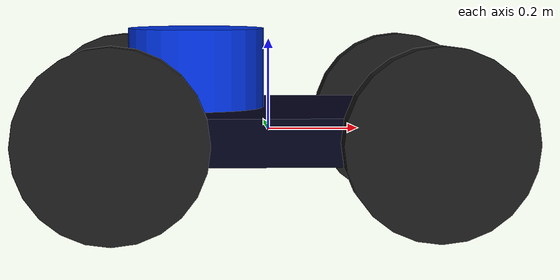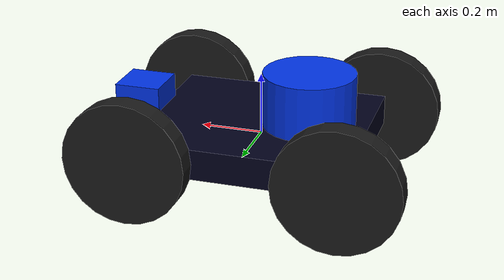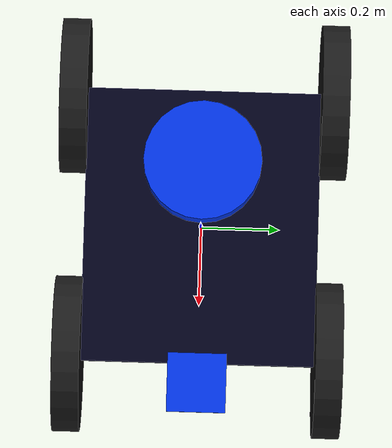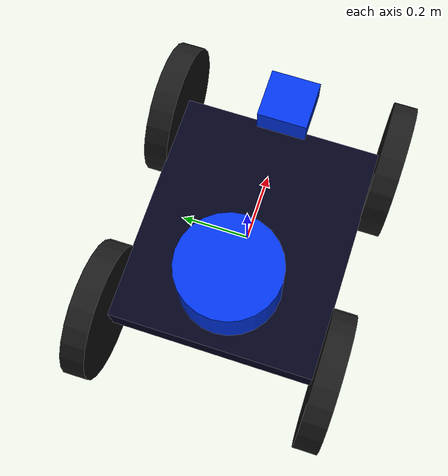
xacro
<?xml version="1.0"?>
<robot name="BMW_Car" xmlns:xacro="http://www.ros.org/wiki/xacro" >

  <!-- 기본 core 내용 포함 -->
  <xacro:include filename="BMW_core.xacro"/>

  <gazebo>
    <plugin name='skid_steer_drive' filename='libgazebo_ros_diff_drive.so'>
      <!-- Update rate -->
      <update_rate>500</update_rate>

      <!-- Number of wheel pairs -->
      <num_wheel_pairs>2</num_wheel_pairs>

      <!-- wheels0 (Front Pair) -->
      <left_joint>LF_wheel_joint</left_joint>
      <right_joint>RF_wheel_joint</right_joint>

      <!-- wheels1 (Rear Pair) -->
      <left_joint>LB_wheel_joint</left_joint>
      <right_joint>RB_wheel_joint</right_joint>

      <!-- kinematics -->
      <!-- Use the actual values from real_BMW_core.xacro -->
      <wheel_separation>0.167</wheel_separation>
      <wheel_diameter>0.066</wheel_diameter>

      <!-- limits -->
      <max_wheel_torque>200</max_wheel_torque>
      <max_wheel_acceleration>10.0</max_wheel_acceleration>

      <!-- output -->
      <odometry_frame>odom</odometry_frame>
      <robot_base_frame>dummy_link</robot_base_frame>

      <publish_odom>true</publish_odom>
      <publish_odom_tf>true</publish_odom_tf>
      <publish_wheel_tf>true</publish_wheel_tf>

      <!-- Control topic -->
      <command_topic>cmd_vel</command_topic>

      <!-- use_sim_time is usually handled by the launch file, but can be set here too -->

    </plugin>
  </gazebo>

</robot>

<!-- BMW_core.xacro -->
<robot xmlns:xacro="http://www.ros.org/wiki/xacro">

    <xacro:include filename="inertial_macros.xacro"/>

    <xacro:property name="wheel_mass" value="0.05"/>

    <material name="blue">
        <color rgba="0 0.2 0.9 1"/>
    </material>

    <material name="gray">
        <color rgba="0.1 0.1 0.1 1"/>
    </material>

    <material name="darkBlue">
        <color rgba="0 0 0.1 1"/>
    </material>

    <link name="dummy_link"/>

    <!-- Chassis -->
    <link name="chassis">
        <visual>
            <geometry>
                <box size="0.6 0.7 0.1"/>
            </geometry>
            <origin rpy="0 0 1.57" xyz="0 0 0"/>
            <material name="darkBlue"/>
        </visual>

        <collision>
            <geometry>
                <box size="0.6 0.7 0.1"/>
            </geometry>
            <origin rpy="0 0 1.57" xyz="0 0 0"/>
        </collision>

        <xacro:inertial_box mass="0.1" x="0.6" y="0.7" z="0.1">
            <origin rpy="0 0 1.57" xyz="0 0 0"/>
        </xacro:inertial_box>

    </link>

    <joint name="chassis_joint" type="fixed">
        <parent link="dummy_link"/>
        <child link="chassis"/>
        <origin xyz="0 0 0"/>
    </joint>

    <gazebo reference="chassis">
        <material>Gazebo/DarkMagentaTransparent</material>
    </gazebo>

    <!-- Front Left Wheel -->
    <link name="LB_wheel">
        <visual>
            <geometry>
                <cylinder radius="0.2" length="0.07"/>
            </geometry>
            <material name="gray"/>
        </visual>

        <collision>
            <geometry>
                <sphere radius="0.2"/>
            </geometry>
        </collision>

        <xacro:inertial_cylinder mass="${wheel_mass}" length="0.07" radius="0.2">
            <origin xyz="0 0 0" rpy="0 0 0"/>
        </xacro:inertial_cylinder>
    </link>

    <joint name="LB_wheel_joint" type="continuous">
        <parent link="chassis"/>
        <child link="LB_wheel"/>
        <origin rpy="0 1.57 -1.57" xyz="-0.333 0.333 0"/>
        <axis xyz="0 0 -1"/>

        <!-- 조인트 물리 속성 추가 -->
        <limit effort="10" velocity="100" lower="-3.14" upper="3.14"/>
        <dynamics damping="0.1" friction="0.1"/>
        <safety_controller k_velocity="1.0" soft_lower_limit="-100" soft_upper_limit="100"/>
    </joint>

    <gazebo reference="LB_wheel">
        <material>Gazebo/Black</material>
        <mu1 value="0.2"/>
        <mu2 value="0.2"/>
    </gazebo>

    <!-- Back Left wheel -->
    <link name="RB_wheel">
        <visual>
            <geometry>
                <cylinder radius="0.2" length="0.07"/>
            </geometry>

            <material name="gray"/>
        </visual>

        <collision>
            <geometry>
                <sphere radius="0.2"/>
            </geometry>
        </collision>

        <xacro:inertial_cylinder mass="${wheel_mass}" length="0.07" radius="0.2">
            <origin xyz="0 0 0" rpy="0 0 0"/>
        </xacro:inertial_cylinder>
    </link>

    <joint name="RB_wheel_joint" type="continuous">
        <parent link="chassis"/>
        <child link="RB_wheel"/>
        <origin rpy="0 1.57 -1.57" xyz="-0.333 -0.333 0"/>
        <axis xyz="0 0 -1"/>

        <!-- 조인트 물리 속성 추가 -->
        <limit effort="10" velocity="100" lower="-3.14" upper="3.14"/>
        <dynamics damping="0.1" friction="0.1"/>
        <safety_controller k_velocity="1.0" soft_lower_limit="-100" soft_upper_limit="100"/>
    </joint>

    <gazebo reference="RB_wheel">
        <material>Gazebo/Black</material>
        <mu1 value="0.2"/>
        <mu2 value="0.2"/>
    </gazebo>

    <!-- Front Right Wheel -->
    <link name="LF_wheel">
        <visual>
            <geometry>
                <cylinder radius="0.2" length="0.07"/>
            </geometry>
            <material name="gray"/>
        </visual>

        <collision>
            <geometry>
                <sphere radius="0.2"/>
            </geometry>
        </collision>

        <xacro:inertial_cylinder mass="${wheel_mass}" length="0.07" radius="0.2">
            <origin xyz="0 0 0" rpy="0 0 0"/>
        </xacro:inertial_cylinder>

    </link>

    <joint name="LF_wheel_joint" type="continuous">
        <parent link="chassis"/>
        <child link="LF_wheel"/>
        <origin rpy="0 1.57 -1.57" xyz="0.333 0.333 0"/>
        <axis xyz="0 0 -1"/>

        <!-- 조인트 물리 속성 추가 -->
        <limit effort="10" velocity="100" lower="-3.14" upper="3.14"/>
        <dynamics damping="0.1" friction="0.1"/>
        <safety_controller k_velocity="1.0" soft_lower_limit="-100" soft_upper_limit="100"/>
    </joint>

    <gazebo reference="LF_wheel">
        <material>Gazebo/Black</material>
        <mu1 value="0.2"/>
        <mu2 value="0.2"/>
    </gazebo>

    <!-- Back Right Wheel -->
    <link name="RF_wheel">
        <visual>
            <geometry>
                <cylinder radius="0.2" length="0.07"/>
            </geometry>
            <material name="gray"/>
        </visual>

        <collision>
            <geometry>
                <sphere radius="0.2"/>
            </geometry>
        </collision>

        <xacro:inertial_cylinder mass="${wheel_mass}" length="0.07" radius="0.2">
            <origin xyz="0 0 0" rpy="0 0 0"/>
        </xacro:inertial_cylinder>
    </link>

    <joint name="RF_wheel_joint" type="continuous">
        <parent link="chassis"/>
        <child link="RF_wheel"/>
        <origin rpy="0 1.57 -1.57" xyz="0.333 -0.333 0"/>
        <axis xyz="0 0 -1"/>

        <!-- 조인트 물리 속성 추가 -->
        <limit effort="10" velocity="100" lower="-3.14" upper="3.14"/>
        <dynamics damping="0.1" friction="0.1"/>
        <safety_controller k_velocity="1.0" soft_lower_limit="-100" soft_upper_limit="100"/>
    </joint>

    <gazebo reference="RF_wheel">
        <material>Gazebo/Black</material>
        <mu1 value="0.2"/>
        <mu2 value="0.2"/>
    </gazebo>

    <!-- Transmission: ros2_control이 각 조인트를 velocity 인터페이스로 제어할 수 있게 매핑 -->
    <transmission name="LF_wheel_transmission">
        <type>transmission_interface/SimpleTransmission</type>
        <joint name="LF_wheel_joint">
            <hardwareInterface>hardware_interface/VelocityJointInterface</hardwareInterface>
        </joint>
        <actuator name="LF_wheel_motor">
            <hardwareInterface>hardware_interface/VelocityJointInterface</hardwareInterface>
            <mechanicalReduction>1</mechanicalReduction>
        </actuator>
    </transmission>

    <transmission name="RF_wheel_transmission">
        <type>transmission_interface/SimpleTransmission</type>
        <joint name="RF_wheel_joint">
            <hardwareInterface>hardware_interface/VelocityJointInterface</hardwareInterface>
        </joint>
        <actuator name="RF_wheel_motor">
            <hardwareInterface>hardware_interface/VelocityJointInterface</hardwareInterface>
            <mechanicalReduction>1</mechanicalReduction>
        </actuator>
    </transmission>

    <transmission name="LB_wheel_transmission">
        <type>transmission_interface/SimpleTransmission</type>
        <joint name="LB_wheel_joint">
            <hardwareInterface>hardware_interface/VelocityJointInterface</hardwareInterface>
        </joint>
        <actuator name="LB_wheel_motor">
            <hardwareInterface>hardware_interface/VelocityJointInterface</hardwareInterface>
            <mechanicalReduction>1</mechanicalReduction>
        </actuator>
    </transmission>

    <transmission name="RB_wheel_transmission">
        <type>transmission_interface/SimpleTransmission</type>
        <joint name="RB_wheel_joint">
            <hardwareInterface>hardware_interface/VelocityJointInterface</hardwareInterface>
        </joint>
        <actuator name="RB_wheel_motor">
            <hardwareInterface>hardware_interface/VelocityJointInterface</hardwareInterface>
            <mechanicalReduction>1</mechanicalReduction>
        </actuator>
    </transmission>

    <!-- Lidar -->
    <link name="lidar">
        <visual>
            <geometry>
                <cylinder radius="0.15" length="0.25"/>
            </geometry>
            <origin rpy="0 0 0" xyz="-0.16 0 0.1"/>
            <material name="blue"/>
        </visual>

        <collision>
            <geometry>
                <cylinder radius="0.15" length="0.25"/>
            </geometry>
            <origin rpy="0 0 0" xyz="-0.16 0 0.1"/>
        </collision>

        <xacro:inertial_cylinder mass="0.1" length="0.25" radius="0.15">
            <origin rpy="0 0 0" xyz="-0.16 0 0.1"/>
        </xacro:inertial_cylinder>

    </link>

    <joint name="lidar_joint" type="fixed">
        <parent link="chassis"/>
        <child link="lidar"/>
        <origin rpy="0 0 0" xyz="0 0 0"/>
    </joint>

    <gazebo reference="lidar">
        <material>Gazebo/Indigo</material>
    </gazebo>

    <!-- Camera-->
    <link name="camera">
        <visual>
            <geometry>
                <box size="0.15 0.15 0.08"/>
            </geometry>
            <origin rpy="0 0 0" xyz="0.2 0 0.05"/>
            <material name="blue"/>
        </visual>

        <collision>
            <geometry>
                <box size="0.15 0.15 0.08"/>
            </geometry>
            <origin rpy="0 0 0" xyz="0.2 0 0.05"/>
        </collision>

        <xacro:inertial_box mass="0.05" x="0.15" y="0.15" z="0.08">
            <origin rpy="0 0 0" xyz="0 0 0"/>
        </xacro:inertial_box>
    </link>

    <joint name="camera_joint" type="fixed">
        <parent link="chassis"/>
        <child link="camera"/>
        <origin rpy="0 0 0" xyz="0.2 0 0.05"/>
    </joint>

    <gazebo reference="camera">
        <material>Gazebo/Blue</material>
    </gazebo>

</robot>
